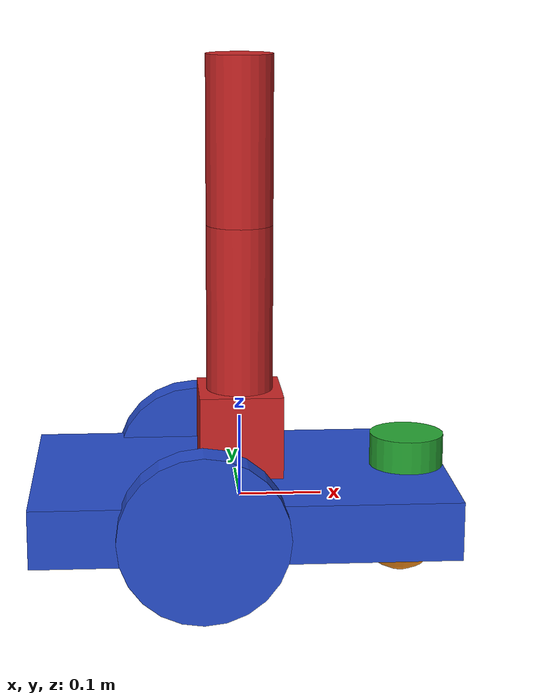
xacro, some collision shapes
<?xml version="1.0"?>
<robot xmlns:xacro="http://www.ros.org/wiki/xacro" name="robot1_arm.xacro">
<xacro:include filename="$(find robot_urdf)/urdf/robot1_arm.gazebo"/>
<xacro:include filename="$(find robot_urdf)/urdf/materials.xacro" />

	<!-- static parameters -->
	<xacro:property name="length_wheel" value="0.04" />
	<xacro:property name="radius_wheel" value="0.1" />
	<xacro:property name="link_length" value="0.2"/>
	<xacro:property name="link_radius" value="0.04"/>

	<!-- macro for cylinder inertia -->
	<xacro:macro name="cylinder_inertia" params="mass r l o_rpy">
		<inertial>

			<mass value="${mass}" />
			<origin rpy="${o_rpy}" xyz="0 0 0"/>
	    <inertia ixx="${mass*(3*r*r+l*l)/12}" ixy = "0" ixz = "0" iyy="${mass*(3*r*r+l*l)/12}" iyz = "0" izz="${mass*(r*r)/2}" />

	  </inertial>
 	</xacro:macro>

	<!-- macro for cylinder geometry -->
  <xacro:macro name="cylinder_geometry" params="r l">
		<geometry>
       	<cylinder length="${l}" radius="${r}"/>
    </geometry>
	</xacro:macro>

	<!-- link wheel macro -->
	<xacro:macro name="link_wheel" params="name">
        <link name="${name}">
          	<xacro:cylinder_inertia mass="0.2" r="${radius_wheel}" l="${length_wheel}" o_rpy="0 1.5707 1.5707"/>
            <collision name="${name}_collision">
              <origin rpy="0 1.5707 1.5707" xyz="0 0 0"/>
              <xacro:cylinder_geometry r="${radius_wheel}" l="${length_wheel}"/>
            </collision>
            <visual name="${name}_visual">
              <origin rpy="0 1.5707 1.5707" xyz="0 0 0"/>
              <xacro:cylinder_geometry r="${radius_wheel}" l="${length_wheel}"/>
            </visual>
        </link>
    </xacro:macro>

	<!-- joint wheel macro -->
    <xacro:macro name="joint_wheel" params="name child parent origin_xyz">
      <joint name="${name}" type="continuous">
        <origin rpy="0 0 0" xyz="${origin_xyz}"/>
        <child link="${child}"/>
        <parent link="${parent}"/>
        <axis rpy="0 0 0" xyz="0 1 0"/>
        <limit effort="10000" velocity="1000"/>
        <joint_properties damping="1.0" friction="1.0"/>
      </joint>
    </xacro:macro>

    <!-- arm link macro -->
		<xacro:macro name="link_arm" params="name">
        <link name="${name}">
          	<xacro:cylinder_inertia mass="0.025" r="${link_radius}" l="${link_length}" o_rpy="0 0 0"/>
            <collision name="${name}_collision">
              <origin xyz="0 0 ${0.5*link_length}" rpy="0 0 0"/>
              <xacro:cylinder_geometry r="${link_radius}" l="${link_length}"/>
            </collision>
            <visual name="${name}_visual">
              <origin xyz="0 0 ${0.5*link_length}" rpy="0 0 0"/>
              <xacro:cylinder_geometry r="${link_radius}" l="${link_length}"/>
            </visual>
        </link>
    </xacro:macro>

    <!-- revolute joint arm link macro -->
    <xacro:macro name="joint_link" params="name ax lower upper parent child origin_xyz">
      <joint name="${name}" type="revolute">
	  	<axis xyz="${ax}"/>
	  	<limit effort="1000.0" lower="${lower}" upper="${upper}" velocity="0.2"/>
	  	<origin rpy="0 0 0" xyz="${origin_xyz}"/>
	  	<parent link="${parent}"/>
	  	<child link="${child}"/>
      </joint>
    </xacro:macro>

    <!-- chassis definition -->
    <link name="base_link">

	    <!-- pose and inertial -->
	    <pose>0 0 0.1 0 0 0</pose>

	    <inertial>
	      <mass value="5"/>
	      <origin rpy="0 0 0" xyz="0 0 0.1"/>
	      <inertia ixx="0.0395416666667" ixy="0" ixz="0" iyy="0.106208333333" iyz="0" izz="0.106208333333"/>
	    </inertial>

	    <collision name="collision_chassis">
	      <geometry>
	        <box size="0.5 0.3 0.07"/>
	      </geometry>
	    </collision>

	    <visual>
	      <origin rpy="0 0 0" xyz="0 0 0"/>
	      <geometry>
	        <box size="0.5 0.3 0.07"/>
	      </geometry>
	      <material name="blue"/>
	    </visual>

	    <!-- caster front -->
	    <collision name="caster_front_collision">
	      <origin rpy=" 0 0 0" xyz="0.35 0 -0.05"/>
	      <geometry>
	        <sphere radius="0.05"/>
	      </geometry>
	      <surface>
	        <friction>
	          <ode>
	            <mu>0</mu>
	            <mu2>0</mu2>
	            <slip1>1.0</slip1>
	            <slip2>1.0</slip2>
	          </ode>
	        </friction>
	      </surface>
	    </collision>
	    <visual name="caster_front_visual">
	      <origin rpy=" 0 0 0" xyz="0.2 0 -0.05"/>
	      <geometry>
	        <sphere radius="0.05"/>
	      </geometry>
	    </visual>

    </link>

    <!-- hokuyo laser link -->
	  <link name="hokuyo_laser_link">
	        <collision>
	            <origin xyz="0 0 0" rpy="0 0 0"/>
	            <geometry>
	                <cylinder length="0.04" radius="0.045"/>
	            </geometry>
	        </collision>
	        <visual>
	            <origin xyz="0 0 0" rpy="0 0 0"/>
	            <geometry>
	                <mesh filename="package://robot_urdf/meshes/sensors/hokuyo/hokuyo.dae"/>
	            </geometry>
	            <material name="green"/>
	        </visual>
	        <inertial>
	            <mass value="1e-5" />
	            <origin xyz="0 0 0" rpy="0 0 0"/>
	            <inertia ixx="1e-6" ixy="0" ixz="0" iyy="1e-6" iyz="0" izz="1e-6" />
	        </inertial>
	  </link>

	  <joint name="hokuyo_laser_joint" type="fixed">
        <axis xyz="0 1 0" />
        <origin xyz="0.205 0 0.055" rpy="0 0 0"/>
				<parent link="base_link"/>
        <child link="hokuyo_laser_link"/>
    </joint>

    <!-- Create wheels -->

    <xacro:link_wheel name="link_right_wheel" />
    <xacro:link_wheel name="link_left_wheel" />
    <xacro:joint_wheel name="joint_right_wheel" child="link_right_wheel" parent="base_link" origin_xyz="-0.05 0.15 0"  />
    <xacro:joint_wheel name="joint_left_wheel" child="link_left_wheel" parent="base_link" origin_xyz="-0.05 -0.15 0"  />

    <!--arm definition -->

	  <link name="arm_base_link">
	  	<inertial>
	  		<mass value="0.1"/>
	  		<origin xyz="0 0 0" rpy="0 0 0" />
	  		<inertia ixx="0.0000416666667" ixy="0" ixz="0" iyy="0.0000416666667" iyz="0" izz="0.0000416666667"/>
	  	</inertial>
	  	<collision>
	  	  <origin xyz="0 0 0" rpy="0 0 0"/>
	      <geometry>
	        <box size="0.1 0.1 0.1"/>
	      </geometry>
	  	</collision>
	  	<visual>
	  	  <origin xyz="0 0 0" rpy="0 0 0"/>
	      <geometry>
	        <box size="0.1 0.1 0.1"/>
	      </geometry>
	      <material name="red" />
	  	</visual>
	  </link>

	  <!-- Create Arms, links and joints -->

    <xacro:link_arm name="arm_link_01" />
    <xacro:link_arm name="arm_link_02" />

	  <joint name="arm_base_to_base" type="continuous">
	  	<parent link="base_link"/>
	  	<child link="arm_base_link"/>
	  	<axis xyz="0 0 1"/>
	  	<origin rpy="0 0 0" xyz="0 0 0.085"/>
	  </joint>

    <xacro:joint_link name="joint_link_01" ax="1 0 0" lower="-3.14" upper="3.14" parent="arm_base_link" child="arm_link_01" origin_xyz="0 0 0.05"  />

    <xacro:joint_link name="joint_link_02" ax="1 0 0" lower="-1.8" upper="1.8" parent="arm_link_01" child="arm_link_02" origin_xyz="0 0 ${link_length}"  />

    <!-- Transmission (Motors) for ros_control plugin -->

    <transmission name="arm_joint_01_trans">
			<type>transmission_interface/SimpleTransmission</type>
			<joint name="arm_base_to_base">
				<hardwareInterface>hardware_interface/EffortJointInterface</hardwareInterface>
			</joint>
			<actuator name="motor1">
				<hardwareInterface>hardware_interface/EffortJointInterface</hardwareInterface>
				<mechanicalInterface>1</mechanicalInterface>
			</actuator>
		</transmission>

		<transmission name="arm_joint_02_trans">
			<type>transmission_interface/SimpleTransmission</type>
			<joint name="joint_link_01">
				<hardwareInterface>hardware_interface/EffortJointInterface</hardwareInterface>
			</joint>
			<actuator name="motor2">
				<hardwareInterface>hardware_interface/EffortJointInterface</hardwareInterface>
				<mechanicalInterface>1</mechanicalInterface>
			</actuator>
		</transmission>

		<transmission name="arm_joint_03_trans">
			<type>transmission_interface/SimpleTransmission</type>
			<joint name="joint_link_02">
				<hardwareInterface>hardware_interface/EffortJointInterface</hardwareInterface>
			</joint>
			<actuator name="motor3">
				<hardwareInterface>hardware_interface/EffortJointInterface</hardwareInterface>
				<mechanicalInterface>1</mechanicalInterface>
			</actuator>
		</transmission>

</robot>
